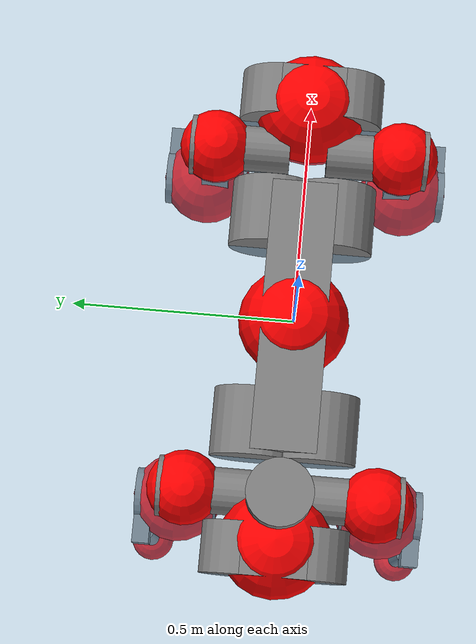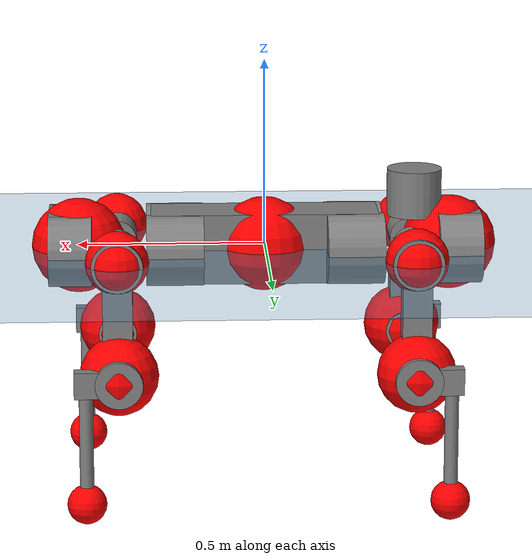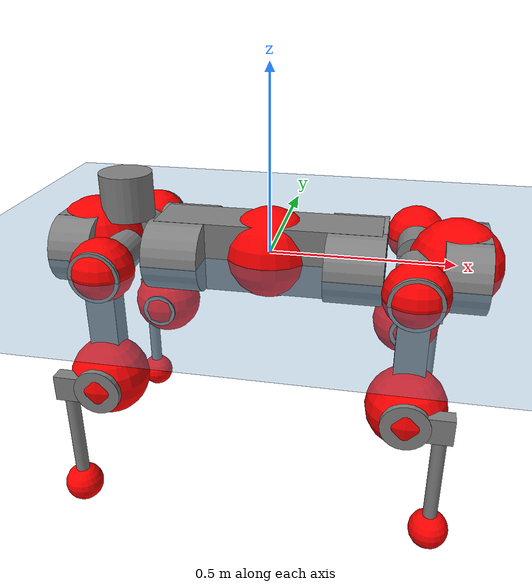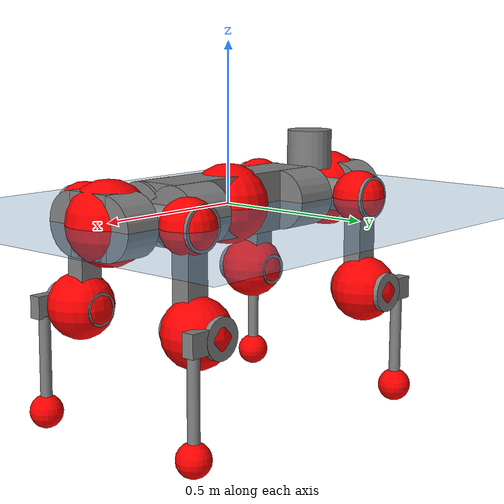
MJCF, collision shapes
<mujoco model="anymal_c">
  <compiler angle="radian" assetdir="assets" balanceinertia="true" inertiafromgeom="false"/>

  <option timestep="0.005" density="1.2" viscosity="2e-05"/>

  <size nkey="1"/>

  <visual>
    <quality shadowsize="8192"/>
    <map shadowclip="0.5"/>
  </visual>

  <default>
    <default class="/">
      <material specular="0" shininess="0.25"/>
      <geom contype="0" conaffinity="0" group="1" solref="-1000 -80"/>
      <site size="0.01 0.005 0.005" group="5"/>
      <general forcelimited="true" forcerange="-80 80" biastype="affine" gainprm="80" biasprm="0 -80 -2"/>
      <default class="anymal_c">
        <joint armature="0.01" damping="0.01" frictionloss="0.1"/>
        <default class="visual">
          <geom type="mesh" group="2"/>
          <default class="visual_zflip"/>
        </default>
        <default class="collision">
          <geom type="cylinder" group="3"/>
          <default class="foot">
            <geom size="0.03 0 0" type="sphere" condim="6" priority="1" friction="0.8 0.02 0.01" solimp="0.015 1 0.03"/>
          </default>
        </default>
      </default>
      <default class="reward_collision_sphere">
        <geom group="5" rgba="1 0 0 1"/>
      </default>
    </default>
  </default>

  <asset>
    <texture type="skybox" colorspace="auto" name="//unnamed_texture_0" builtin="gradient" rgb1="0.95 0.95 0.95" rgb2="0.95 0.95 0.95" width="100" height="600"/>
    <texture type="2d" colorspace="auto" name="texplane" builtin="checker" rgb1="0.345 0.575 0.748" rgb2="0.345 0.575 0.748" markrgb="1 1 1" width="512" height="512"/>
    <texture type="2d" colorspace="linear" name="base" file="base.png"/>
    <texture type="2d" colorspace="linear" name="top_shell" file="top_shell.png"/>
    <texture type="2d" colorspace="linear" name="bottom_shell" file="bottom_shell.png"/>
    <texture type="2d" colorspace="linear" name="remote" file="remote.png"/>
    <texture type="2d" colorspace="linear" name="hatch" file="hatch.png"/>
    <texture type="2d" colorspace="linear" name="handle" file="handle.png"/>
    <texture type="2d" colorspace="linear" name="face" file="face.png"/>
    <texture type="2d" colorspace="linear" name="battery" file="battery.png"/>
    <texture type="2d" colorspace="linear" name="lidar_cage" file="lidar_cage.png"/>
    <texture type="2d" colorspace="linear" name="depth_camera" file="depth_camera.png"/>
    <texture type="2d" colorspace="linear" name="wide_angle_camera" file="wide_angle_camera.png"/>
    <texture type="2d" colorspace="linear" name="lidar" file="lidar.png"/>
    <texture type="2d" colorspace="linear" name="drive" file="drive.png"/>
    <texture type="2d" colorspace="linear" name="hip_l" file="hip_l.png"/>
    <texture type="2d" colorspace="linear" name="shank_l" file="shank_l.png"/>
    <texture type="2d" colorspace="linear" name="foot" file="foot.png"/>
    <texture type="2d" colorspace="linear" name="thigh" file="thigh.png"/>
    <texture type="2d" colorspace="linear" name="shank_r" file="shank_r.png"/>
    <texture type="2d" colorspace="linear" name="hip_r" file="hip_r.png"/>
    <material name="MatPlane" class="/" texture="texplane" texuniform="true" texrepeat="2 2" specular="0.9" shininess="0.5"/>
    <material name="black_plastic" class="/" rgba="0.007 0.007 0.007 1"/>
    <material name="green" class="/" rgba="0.052 0.178 0.033 1"/>
    <material name="red" class="/" rgba="0.178 0.006 0.005 1"/>
    <material name="yellow" class="/" rgba="0.178 0.119 0.006 1"/>
    <material name="lwl" class="/" rgba="0.8 0.8 0.8 1"/>
    <material name="base" class="/" texture="base"/>
    <material name="top_shell" class="/" texture="top_shell"/>
    <material name="bottom_shell" class="/" texture="bottom_shell"/>
    <material name="hip_l" class="/" texture="hip_l"/>
    <material name="thigh" class="/" texture="thigh"/>
    <material name="shank_l" class="/" texture="shank_l"/>
    <material name="foot" class="/" texture="foot"/>
    <material name="hip_r" class="/" texture="hip_r"/>
    <material name="shank" class="/" texture="shank_r"/>
    <material name="hatch" class="/" texture="hatch"/>
    <material name="remote" class="/" texture="remote"/>
    <material name="handle" class="/" texture="handle"/>
    <material name="face" class="/" texture="face"/>
    <material name="depth_camera" class="/" texture="depth_camera"/>
    <material name="wide_angle_camera" class="/" texture="wide_angle_camera"/>
    <material name="battery" class="/" texture="battery"/>
    <material name="lidar_cage" class="/" texture="lidar_cage"/>
    <material name="lidar" class="/" texture="lidar"/>
    <material name="drive" class="/" texture="drive"/>
    <mesh name="base_0" class="/" file="base_0.obj"/>
    <mesh name="base_1" class="/" file="base_1.obj"/>
    <mesh name="base_2" class="/" file="base_2.obj"/>
    <mesh name="base_3" class="/" file="base_3.obj"/>
    <mesh name="base_4" class="/" file="base_4.obj"/>
    <mesh name="base_5" class="/" file="base_5.obj"/>
    <mesh name="top_shell" class="/" file="top_shell.obj"/>
    <mesh name="bottom_shell" class="/" file="bottom_shell.obj"/>
    <mesh name="remote" class="/" file="remote.obj"/>
    <mesh name="handle" class="/" file="handle.obj"/>
    <mesh name="face" class="/" file="face.obj"/>
    <mesh name="wide_angle_camera" class="/" file="wide_angle_camera.obj"/>
    <mesh name="depth_camera" class="/" file="depth_camera.obj"/>
    <mesh name="battery" class="/" file="battery.obj"/>
    <mesh name="lidar_cage" class="/" file="lidar_cage.obj"/>
    <mesh name="lidar" class="/" file="lidar.obj"/>
    <mesh name="drive" class="/" file="drive.obj"/>
    <mesh name="hip_l" class="/" file="hip_l.obj"/>
    <mesh name="thigh" class="/" file="thigh.obj"/>
    <mesh name="shank_l" class="/" file="shank_l.obj"/>
    <mesh name="foot" class="/" file="foot.obj"/>
    <mesh name="hip_r" class="/" file="hip_r.obj"/>
    <mesh name="hatch" class="/" file="hatch.obj"/>
    <mesh name="shank_r" class="/" file="shank_r.obj"/>
  </asset>

  <worldbody>
    <geom name="floor" class="/" size="100 100 0.125" type="plane" group="0" material="MatPlane"/>
    <light name="toplight_shadow" class="/" pos="0 0 5" dir="0.0990148 0.0990148 -0.990148" type="directional" ambient="0.04 0.04 0.04" diffuse="0.55 0.55 0.55" specular="0.12 0.12 0.12"/>
    <light name="toplight_fill" class="/" pos="0 0 5" dir="0.0990148 0.0990148 -0.990148" type="directional" castshadow="false" ambient="0.04 0.04 0.04" diffuse="0.3 0.3 0.3" specular="0.08 0.08 0.08"/>
    <body name="trunk" childclass="anymal_c" pos="0.000502126 -0.00033188 0.000362349" quat="1 -0.000597385 -3.43422e-05 -0.000116757">
      <inertial pos="0.000657401 -0.00279578 0.0497138" quat="0.501146 0.501781 0.500506 0.49655" mass="22.6775" diaginertia="1.04558 0.588544 0.269363"/>
      <joint name="//unnamed_joint_0" type="free" armature="0" damping="0" frictionloss="0"/>
      <geom name="//unnamed_geom_1" class="visual" material="green" mesh="base_0"/>
      <geom name="//unnamed_geom_2" class="visual" material="yellow" mesh="base_1"/>
      <geom name="//unnamed_geom_3" class="visual" material="red" mesh="base_2"/>
      <geom name="//unnamed_geom_4" class="visual" material="black_plastic" mesh="base_3"/>
      <geom name="//unnamed_geom_5" class="visual" material="lwl" mesh="base_4"/>
      <geom name="//unnamed_geom_6" class="visual" material="base" mesh="base_5"/>
      <geom name="trunk_1" class="collision" size="0.303469 0.0732513 0.0941802" type="box"/>
      <geom name="trunk_2" class="collision" size="0.0941802 0.0758674" pos="0.240027 0.0692704 0" quat="0.707107 0 0.707107 0"/>
      <geom name="trunk_3" class="collision" size="0.0941802 0.0758674" pos="-0.240027 0.0692704 0" quat="0.707107 0 0.707107 0"/>
      <geom name="trunk_4" class="collision" size="0.0941802 0.0758674" pos="0.240027 -0.0692704 0" quat="0.707107 0 0.707107 0"/>
      <geom name="trunk_5" class="collision" size="0.0941802 0.0758674" pos="-0.240027 -0.0692704 0" quat="0.707107 0 0.707107 0"/>
      <geom name="//unnamed_geom_12" class="visual" material="top_shell" mesh="top_shell"/>
      <geom name="//unnamed_geom_13" class="visual" material="bottom_shell" mesh="bottom_shell"/>
      <geom name="//unnamed_geom_14" class="visual" material="remote" mesh="remote"/>
      <geom name="//unnamed_geom_15" class="visual" material="handle" mesh="handle"/>
      <geom name="//unnamed_geom_16" class="visual" pos="0.457431 0 0" quat="1 0 0 0" material="face" mesh="face"/>
      <geom name="trunk_6" class="collision" size="0.0575546 0.0732513 0.0941802" pos="0.518128 0 0" type="box"/>
      <geom name="//unnamed_geom_18" class="collision" size="0.0941802 0.0575546" pos="0.518128 0.0692704 0" quat="0.707107 0 0.707107 0"/>
      <geom name="//unnamed_geom_19" class="collision" size="0.0941802 0.0575546" pos="0.518128 -0.0692704 0" quat="0.707107 0 0.707107 0"/>
      <geom name="//unnamed_geom_20" class="visual" pos="0.509462 0 -0.0301126" quat="0.965926 0 0.258819 0" material="depth_camera" mesh="depth_camera"/>
      <geom name="//unnamed_geom_21" class="visual" pos="0.566133 0 0.0156614" material="wide_angle_camera" mesh="wide_angle_camera"/>
      <geom name="//unnamed_geom_22" class="visual_zflip" pos="-0.457431 0 0" quat="0 0 0 1" material="face" mesh="face"/>
      <geom name="trunk_7" class="collision" size="0.0575546 0.0732513 0.0941802" pos="-0.518128 0 0" quat="0 0 0 1" type="box"/>
      <geom name="//unnamed_geom_24" class="collision" size="0.0941802 0.0575546" pos="-0.518128 -0.0692704 0" quat="0 -0.707107 0 0.707107"/>
      <geom name="//unnamed_geom_25" class="collision" size="0.0941802 0.0575546" pos="-0.518128 0.0692704 0" quat="0 -0.707107 0 0.707107"/>
      <geom name="//unnamed_geom_26" class="visual" pos="-0.509462 0 -0.0301126" quat="0 -0.258819 0 0.965926" material="depth_camera" mesh="depth_camera"/>
      <geom name="//unnamed_geom_27" class="visual_zflip" pos="-0.566133 0 0.0156614" quat="0 0 0 1" material="wide_angle_camera" mesh="wide_angle_camera"/>
      <geom name="//unnamed_geom_28" class="visual" material="battery" mesh="battery"/>
      <geom name="//unnamed_geom_29" class="visual" pos="0 0.0741649 0.0308279" quat="0.683013 -0.183013 0.183013 0.683013" material="depth_camera" mesh="depth_camera"/>
      <geom name="//unnamed_geom_30" class="visual" pos="0 -0.0741649 0.0308279" quat="0.683013 0.183013 0.183013 -0.683013" material="depth_camera" mesh="depth_camera"/>
      <geom name="//unnamed_geom_31" class="visual" pos="-0.401701 0 0.0768949" quat="1 0 0 0" material="lidar_cage" mesh="lidar_cage"/>
      <geom name="trunk_8" class="collision" size="0.0732513 0.0627868" pos="-0.401701 0 0.139666"/>
      <geom name="//unnamed_geom_33" class="visual" pos="-0.401701 -4.47856e-05 0.148768" quat="0.707107 0 0 -0.707107" material="lidar" mesh="lidar"/>
      <geom name="//unnamed_geom_34" class="visual" pos="0.330962 0.102936 -9.76545e-10" quat="0.258819 0.965926 0 0" material="drive" mesh="drive"/>
      <geom name="//unnamed_geom_35" class="visual" pos="0.330962 -0.102936 9.76545e-10" quat="0.258819 -0.965926 0 0" material="drive" mesh="drive"/>
      <geom name="//unnamed_geom_36" class="visual" pos="-0.330962 0.102936 9.76545e-10" quat="0 0 0.965926 -0.258819" material="drive" mesh="drive"/>
      <geom name="//unnamed_geom_37" class="visual" pos="-0.330962 -0.102936 -9.76545e-10" quat="0 0 -0.965926 -0.258819" material="drive" mesh="drive"/>
      <geom name="//unnamed_geom_38" class="visual" pos="0.128014 0 0.0763718" quat="1 0 0 0" material="hatch" mesh="hatch"/>
      <geom name="//unnamed_geom_39" class="reward_collision_sphere" size="0.125574"/>
      <geom name="//unnamed_geom_40" class="reward_collision_sphere" size="0.125574" pos="0.496608 0 0"/>
      <geom name="//unnamed_geom_41" class="reward_collision_sphere" size="0.125574" pos="-0.496608 0 0"/>
      <site name="imu" pos="0.287629 0.00819702 0.0353003" size="0.0104645"/>
      <camera name="track" pos="0 -1.97916 0" quat="0.707107 0.707107 0 0" mode="trackcom"/>
      <camera name="ego_camera" pos="0.496608 0 -0.0418476" quat="-0.5 -0.5 0.5 0.5"/>
      <body name="LF_HIP" pos="0.328701 0.10038 -0.001265" quat="0.258883 0.965909 0.000410511 -0.000322284">
        <inertial pos="0.0623774 -0.017545 -0.00789206" quat="-0.127962 0.709793 -0.134988 0.67941" mass="3.17131" diaginertia="0.00940506 0.00439001 0.00400791"/>
        <joint name="LF_HAA" pos="0 0 0" axis="1 -0.00046346 -8.06927e-05" range="-0.723155 0.508367" armature="0.0105788" damping="0.0216247" frictionloss="0.0915897"/>
        <geom name="//unnamed_geom_42" class="visual" pos="0 -5.74457e-05 9.43542e-06" quat="0.258819 -0.965926 0 0" material="hip_l" mesh="hip_l"/>
        <geom name="//unnamed_geom_43" class="visual" pos="0.066104 -0.0786183 -0.045809" quat="0.183013 -0.683013 0.683013 0.183013" material="drive" mesh="drive"/>
        <geom name="//unnamed_geom_44" class="collision" size="0.0523223 0.0732513" pos="0.066104 -0.0118352 -0.00722393" quat="-0.353553 -0.612372 0.612372 -0.353553"/>
        <body name="LF_THIGH" pos="0.0645833 -0.0692817 -0.0426791" quat="0.183273 -0.683713 0.682063 0.183677">
          <inertial pos="0.0341744 0.000258788 -0.255104" quat="0.991513 -0.00445749 -0.092336 0.0914116" mass="3.43126" diaginertia="0.0498808 0.0277844 0.00528088"/>
          <joint name="LF_HFE" pos="0 0 0" axis="0.999994 0.00264637 -0.00239673" stiffness="0.0031062" range="-3.08825 3.18689" armature="0.0107583" damping="0.021917" frictionloss="0.0941812"/>
          <geom name="//unnamed_geom_45" class="visual" pos="0.00226806 3.57392e-06 0" quat="0.707107 0 0 -0.707107" material="thigh" mesh="thigh"/>
          <geom name="//unnamed_geom_46" class="collision" size="0.068019 0.0418579" pos="0.0441429 0 0" quat="0.5 0.5 -0.5 -0.5"/>
          <geom name="//unnamed_geom_47" class="collision" size="0.0392417 0.0313934 0.147878" pos="0.0331072 0 -0.147841" quat="0.707107 0 0 -0.707107" type="box"/>
          <geom name="//unnamed_geom_48" class="visual" pos="0.110688 0 -0.298164" quat="1 0 0 0" material="drive" mesh="drive"/>
          <geom name="//unnamed_geom_49" class="collision" size="0.0523223 0.0732513" pos="0.0334383 0 -0.298164" quat="0.707107 0 0.707107 0"/>
          <geom name="//unnamed_geom_50" class="reward_collision_sphere" size="0.0837157" pos="0.0275893 0 0"/>
          <body name="LF_SHANK" pos="0.111831 0.00269934 -0.297322" quat="1 -5.30862e-05 -0.000156873 -0.000186013">
            <inertial pos="0.00588122 -0.0614594 -0.0858397" quat="0.992996 -0.115126 -0.00355104 -0.026308" mass="0.683977" diaginertia="0.0162618 0.00879549 0.00140523"/>
            <joint name="LF_KFE" pos="0 0 0" axis="0.999985 -0.00341696 0.00433399" range="-3.09206 3.14719" armature="0.0106017" damping="0.00581945" frictionloss="0.107392"/>
            <geom name="//unnamed_geom_51" class="visual" pos="0.000739563 0.00394339 0" quat="0.707107 0 0 -0.707107" material="shank_l" mesh="shank_l"/>
            <geom name="LF_kfe_act" class="collision" size="0.0627868 0.0209289" pos="0.0220715 0 0" quat="0.5 0.5 -0.5 -0.5"/>
            <geom name="//unnamed_geom_53" class="collision" size="0.0601696 0.0353176 0.0198825" pos="0.0220715 -0.0568997 0" quat="0.5 0.5 -0.5 -0.5" type="box"/>
            <geom name="//unnamed_geom_54" class="visual" pos="0.0144014 -0.0857626 -0.35358" quat="0.382683 0 0 -0.92388" material="foot" mesh="foot"/>
            <geom name="LF_calf" class="collision" size="0.0183128 0.147813" pos="0.0144016 -0.0870334 -0.17679" quat="0.707107 0 0 -0.707107"/>
            <geom name="LF_foot" class="foot" size="0.0309803" pos="0.0144016 -0.0870334 -0.330041" quat="0.707107 0 0 -0.707107"/>
            <geom name="//unnamed_geom_57" class="reward_collision_sphere" size="0.104645" pos="-0.0551786 0 0"/>
            <geom name="//unnamed_geom_58" class="reward_collision_sphere" size="0.0523223" pos="0.0144016 -0.0870334 -0.330041"/>
            <site name="LF_foot" class="foot" pos="0.0144016 -0.0870334 -0.330041" quat="0.707107 0 0 -0.707107" size="0.0104645"/>
          </body>
        </body>
      </body>
      <body name="RF_HIP" pos="0.328796 -0.103302 0.000698494" quat="0.258809 -0.965928 -2.17228e-05 -2.35373e-05">
        <inertial pos="0.0603622 0.0134326 -0.0112329" quat="0.141132 0.678437 0.137629 0.707717" mass="3.16325" diaginertia="0.00913231 0.00475903 0.00393006"/>
        <joint name="RF_HAA" pos="0 0 0" axis="0.999928 -0.0103063 -0.00614721" range="-0.513875 0.728792" armature="0.0106508" damping="0" frictionloss="0.107545"/>
        <geom name="//unnamed_geom_59" class="visual" pos="0 5.74453e-05 9.43539e-06" quat="0.258819 0.965926 0 0" material="hip_r" mesh="hip_r"/>
        <geom name="//unnamed_geom_60" class="visual" pos="0.066104 0.0786183 -0.045809" quat="0.183013 0.683013 0.683013 -0.183013" material="drive" mesh="drive"/>
        <geom name="//unnamed_geom_61" class="collision" size="0.0523223 0.0732513" pos="0.066104 0.0118352 -0.00722393" quat="-0.353553 0.612372 0.612372 0.353553"/>
        <body name="RF_THIGH" pos="0.0682467 0.0706366 -0.0464347" quat="0.183029 0.683556 0.682258 -0.183784">
          <inertial pos="0.0366528 -4.23579e-05 -0.258684" quat="0.99252 0.0034762 -0.0864746 0.0861075" mass="3.68596" diaginertia="0.0486623 0.0277112 0.00548151"/>
          <joint name="RF_HFE" pos="0 0 0" axis="0.999999 -0.000874127 -0.00140183" range="-3.13669 3.15813" armature="0.00930923" damping="0.0104523" frictionloss="0.109846"/>
          <geom name="//unnamed_geom_62" class="visual" pos="0.00226806 3.57392e-06 0" quat="0.707107 0 0 -0.707107" material="thigh" mesh="thigh"/>
          <geom name="//unnamed_geom_63" class="collision" size="0.068019 0.0418579" pos="0.0441429 0 0" quat="0.5 0.5 0.5 0.5"/>
          <geom name="//unnamed_geom_64" class="collision" size="0.0392417 0.0313934 0.147878" pos="0.0331072 0 -0.147841" quat="0.707107 0 0 0.707107" type="box"/>
          <geom name="//unnamed_geom_65" class="visual" pos="0.110688 0 -0.298164" quat="1 0 0 0" material="drive" mesh="drive"/>
          <geom name="//unnamed_geom_66" class="collision" size="0.0523223 0.0732513" pos="0.0334383 0 -0.298164" quat="0.707107 0 0.707107 0"/>
          <geom name="//unnamed_geom_67" class="reward_collision_sphere" size="0.0837157" pos="0.0275893 0 0"/>
          <body name="RF_SHANK" pos="0.108188 0.000337981 -0.298499" quat="1 -0.000973784 3.33436e-05 -0.000206643">
            <inertial pos="0.00351394 0.060643 -0.0843561" quat="0.993058 0.112064 -0.00673661 0.0350969" mass="0.716094" diaginertia="0.017414 0.00892458 0.0014504"/>
            <joint name="RF_KFE" pos="0 0 0" axis="1 2.0695e-06 -3.74342e-05" range="-3.18877 3.09238" armature="0.0120724" damping="0.0221119" frictionloss="0.111199"/>
            <geom name="//unnamed_geom_68" class="visual" pos="0.000739559 -0.00394338 0" quat="0.707107 0 0 0.707107" material="shank" mesh="shank_r"/>
            <geom name="RF_kfe_act" class="collision" size="0.0627868 0.0209289" pos="0.0220715 0 0" quat="0.5 0.5 0.5 0.5"/>
            <geom name="//unnamed_geom_70" class="collision" size="0.0601696 0.0353176 0.0198825" pos="0.0220715 0.0568997 0" quat="0.5 0.5 0.5 0.5" type="box"/>
            <geom name="//unnamed_geom_71" class="visual" pos="0.0144018 0.0857626 -0.35358" quat="0.382683 0 0 0.92388" material="foot" mesh="foot"/>
            <geom name="RF_calf" class="collision" size="0.0183128 0.147813" pos="0.0144016 0.0870334 -0.17679" quat="0.707107 0 0 0.707107"/>
            <geom name="RF_foot" class="foot" size="0.0280229" pos="0.0144016 0.0870334 -0.330041" quat="0.707107 0 0 0.707107"/>
            <geom name="//unnamed_geom_74" class="reward_collision_sphere" size="0.104645" pos="-0.0551786 0 0"/>
            <geom name="//unnamed_geom_75" class="reward_collision_sphere" size="0.0523223" pos="0.0144016 0.0870334 -0.330041"/>
            <site name="RF_foot" class="foot" pos="0.0144016 0.0870334 -0.330041" quat="0.707107 0 0 0.707107" size="0.0104645"/>
          </body>
        </body>
      </body>
      <body name="LH_HIP" pos="-0.327684 0.100837 -0.00163374" quat="-7.62461e-06 -7.951e-07 0.965921 -0.258835">
        <inertial pos="0.0624793 0.0174235 -0.0111745" quat="0.132863 0.669843 0.134276 0.718073" mass="3.28831" diaginertia="0.0101293 0.0048652 0.00415557"/>
        <joint name="LH_HAA" pos="0 0 0" axis="0.999886 -0.0151042 0.000695484" range="-0.504695 0.733789" armature="0.0110432" damping="0" frictionloss="0.104943"/>
        <geom name="//unnamed_geom_76" class="visual" pos="0 5.74453e-05 9.43539e-06" quat="-0.258819 -0.965926 0 0" material="hip_r" mesh="hip_r"/>
        <geom name="//unnamed_geom_77" class="visual" pos="0.066104 0.0786183 -0.045809" quat="0.183013 0.683013 0.683013 -0.183013" material="drive" mesh="drive"/>
        <geom name="//unnamed_geom_78" class="collision" size="0.0523223 0.0732513" pos="0.066104 0.0118352 -0.00722393" quat="-0.353553 0.612372 0.612372 0.353553"/>
        <body name="LH_THIGH" pos="0.0651299 0.070636 -0.0437605" quat="0.18301 0.683042 0.682993 -0.18298">
          <inertial pos="0.0320178 7.78022e-05 -0.259346" quat="0.992566 -0.00639239 -0.0818494 0.0898483" mass="3.36507" diaginertia="0.0465594 0.0283283 0.00510886"/>
          <joint name="LH_HFE" pos="0 0 0" axis="1 -0.000178942 2.70981e-05" stiffness="0.0106765" range="-3.17682 3.09039" armature="0.0099845" damping="0" frictionloss="0.105503"/>
          <geom name="//unnamed_geom_79" class="visual" pos="0.00226806 3.57392e-06 0" quat="0.707107 0 0 -0.707107" material="thigh" mesh="thigh"/>
          <geom name="//unnamed_geom_80" class="collision" size="0.068019 0.0418579" pos="0.0441429 0 0" quat="0.5 0.5 -0.5 -0.5"/>
          <geom name="//unnamed_geom_81" class="collision" size="0.0392417 0.0313934 0.147878" pos="0.0331072 0 -0.147841" quat="0.707107 0 0 -0.707107" type="box"/>
          <geom name="//unnamed_geom_82" class="visual" pos="0.110688 0 -0.298164" quat="1 0 0 0" material="drive" mesh="drive"/>
          <geom name="//unnamed_geom_83" class="collision" size="0.0523223 0.0732513" pos="0.0334383 0 -0.298164" quat="0.707107 0 0.707107 0"/>
          <geom name="//unnamed_geom_84" class="reward_collision_sphere" size="0.0837157" pos="0.0275893 0 0"/>
          <body name="LH_SHANK" pos="0.110141 -0.000594057 -0.29854" quat="1 6.99815e-05 0.000104498 7.11995e-05">
            <inertial pos="0.00771623 0.0633026 -0.0845026" quat="0.992426 0.117283 -0.00523326 0.0361597" mass="0.690656" diaginertia="0.01651 0.00929505 0.00143657"/>
            <joint name="LH_KFE" pos="0 0 0" axis="1 0.000175118 -0.000620834" range="-3.08838 3.08851" armature="0.011864" damping="0.0229174" frictionloss="0.089992"/>
            <geom name="//unnamed_geom_85" class="visual" pos="0.000739559 -0.00394338 0" quat="-0.707107 0 0 -0.707107" material="shank" mesh="shank_r"/>
            <geom name="LH_kfe_act" class="collision" size="0.0627868 0.0209289" pos="0.0220715 0 0" quat="0.5 0.5 -0.5 -0.5"/>
            <geom name="//unnamed_geom_87" class="collision" size="0.0601696 0.0353176 0.0198825" pos="0.0220715 0.0568997 0" quat="0.5 0.5 -0.5 -0.5" type="box"/>
            <geom name="//unnamed_geom_88" class="visual" pos="0.0144018 0.0857626 -0.35358" quat="-0.382683 0 0 -0.92388" material="foot" mesh="foot"/>
            <geom name="LH_calf" class="collision" size="0.0183128 0.147813" pos="0.0144016 0.0870334 -0.17679" quat="0.707107 0 0 -0.707107"/>
            <geom name="LH_foot" class="foot" size="0.0346496" pos="0.0144016 0.0870334 -0.330041" quat="0.707107 0 0 -0.707107"/>
            <geom name="//unnamed_geom_91" class="reward_collision_sphere" size="0.104645" pos="-0.0551786 0 0"/>
            <geom name="//unnamed_geom_92" class="reward_collision_sphere" size="0.0523223" pos="0.0144016 0.0870334 -0.330041"/>
            <site name="LH_foot" class="foot" pos="0.0144016 0.0870334 -0.330041" quat="0.707107 0 0 -0.707107" size="0.0104645"/>
          </body>
        </body>
      </body>
      <body name="RH_HIP" pos="-0.32884 -0.10415 0.0015915" quat="9.71146e-05 -3.69851e-05 -0.965929 -0.258807">
        <inertial pos="0.0603664 -0.0134471 -0.0112757" quat="-0.128907 0.70487 -0.14253 0.682808" mass="3.20921" diaginertia="0.00929397 0.00457107 0.00401852"/>
        <joint name="RH_HAA" pos="0 0 0" axis="0.999901 0.0137316 -0.0030329" stiffness="0.00103882" range="-0.777281 0.530258" armature="0.00997132" damping="0.00207031" frictionloss="0.104677"/>
        <geom name="//unnamed_geom_93" class="visual" pos="0 -5.74457e-05 9.43542e-06" quat="-0.258819 0.965926 0 0" material="hip_l" mesh="hip_l"/>
        <geom name="//unnamed_geom_94" class="visual" pos="0.066104 -0.0786183 -0.045809" quat="-0.183013 0.683013 -0.683013 -0.183013" material="drive" mesh="drive"/>
        <geom name="//unnamed_geom_95" class="collision" size="0.0523223 0.0732513" pos="0.066104 -0.0118352 -0.00722393" quat="0.353553 0.612372 -0.612372 0.353553"/>
        <body name="RH_THIGH" pos="0.0683602 -0.0707691 -0.0459297" quat="-0.183619 0.683432 -0.682717 -0.181938">
          <inertial pos="0.0342984 0.00198302 -0.257476" quat="0.993142 -0.00672523 -0.0805239 0.0844976" mass="3.29948" diaginertia="0.0464228 0.0277442 0.0051565"/>
          <joint name="RH_HFE" pos="0 0 0" axis="0.999988 0.00370307 -0.00324966" stiffness="0.00148204" range="-3.09765 3.14888" armature="0.0110137" damping="0.0164061" frictionloss="0.10507"/>
          <geom name="//unnamed_geom_96" class="visual" pos="0.00226806 3.57392e-06 0" quat="0.707107 0 0 -0.707107" material="thigh" mesh="thigh"/>
          <geom name="//unnamed_geom_97" class="collision" size="0.068019 0.0418579" pos="0.0441429 0 0" quat="0.5 0.5 0.5 0.5"/>
          <geom name="//unnamed_geom_98" class="collision" size="0.0392417 0.0313934 0.147878" pos="0.0331072 0 -0.147841" quat="0.707107 0 0 0.707107" type="box"/>
          <geom name="//unnamed_geom_99" class="visual" pos="0.110688 0 -0.298164" quat="1 0 0 0" material="drive" mesh="drive"/>
          <geom name="//unnamed_geom_100" class="collision" size="0.0523223 0.0732513" pos="0.0334383 0 -0.298164" quat="0.707107 0 0.707107 0"/>
          <geom name="//unnamed_geom_101" class="reward_collision_sphere" size="0.0837157" pos="0.0275893 0 0"/>
          <body name="RH_SHANK" pos="0.109871 0.00273635 -0.297572" quat="0.999999 0.000678368 -5.51385e-05 -0.00110673">
            <inertial pos="0.00893164 -0.0616074 -0.0847846" quat="0.991373 -0.12743 0.00442385 -0.0303716" mass="0.683533" diaginertia="0.0162112 0.00877308 0.00137022"/>
            <joint name="RH_KFE" pos="0 0 0" axis="1 0.000102114 0.000983284" range="-3.13132 3.1896" armature="0.0104413" damping="0.0225808" frictionloss="0.110905"/>
            <geom name="//unnamed_geom_102" class="visual" pos="0.000739563 0.00394339 0" quat="0.707107 0 0 -0.707107" material="shank_l" mesh="shank_l"/>
            <geom name="RH_kfe_act" class="collision" size="0.0627868 0.0209289" pos="0.0220715 0 0" quat="0.5 0.5 0.5 0.5"/>
            <geom name="//unnamed_geom_104" class="collision" size="0.0601696 0.0353176 0.0198825" pos="0.0220715 -0.0568997 0" quat="0.5 0.5 0.5 0.5" type="box"/>
            <geom name="//unnamed_geom_105" class="visual" pos="0.0144014 -0.0857626 -0.35358" quat="0.382683 0 0 -0.92388" material="foot" mesh="foot"/>
            <geom name="RH_calf" class="collision" size="0.0183128 0.147813" pos="0.0144016 -0.0870334 -0.17679" quat="0.707107 0 0 0.707107"/>
            <geom name="RH_foot" class="foot" size="0.0272565" pos="0.0144016 -0.0870334 -0.330041" quat="0.707107 0 0 0.707107"/>
            <geom name="//unnamed_geom_108" class="reward_collision_sphere" size="0.104645" pos="-0.0551786 0 0"/>
            <geom name="//unnamed_geom_109" class="reward_collision_sphere" size="0.0523223" pos="0.0144016 -0.0870334 -0.330041"/>
            <site name="RH_foot" class="foot" pos="0.0144016 -0.0870334 -0.330041" quat="0.707107 0 0 0.707107" size="0.0104645"/>
          </body>
        </body>
      </body>
    </body>
  </worldbody>

  <contact>
    <pair class="/" geom1="floor" geom2="LF_foot" name="//unnamed_contact_0"/>
    <pair class="/" geom1="floor" geom2="RF_foot" name="//unnamed_contact_1"/>
    <pair class="/" geom1="floor" geom2="LH_foot" name="//unnamed_contact_2"/>
    <pair class="/" geom1="floor" geom2="RH_foot" name="//unnamed_contact_3"/>
  </contact>

  <actuator>
    <general name="LF_HAA" class="/" joint="LF_HAA" forcerange="-75.9294 75.9294" gainprm="79.8744" biasprm="0 -79.8744 -2.09443"/>
    <general name="LF_HFE" class="/" joint="LF_HFE" forcerange="-75.8017 75.8017" gainprm="79.8744" biasprm="0 -79.8744 -2.09443"/>
    <general name="LF_KFE" class="/" joint="LF_KFE" forcerange="-83.8397 83.8397" gainprm="79.8744" biasprm="0 -79.8744 -2.09443"/>
    <general name="RF_HAA" class="/" joint="RF_HAA" forcerange="-84.4661 84.4661" gainprm="79.8744" biasprm="0 -79.8744 -2.09443"/>
    <general name="RF_HFE" class="/" joint="RF_HFE" forcerange="-93.8144 93.8144" gainprm="79.8744" biasprm="0 -79.8744 -2.09443"/>
    <general name="RF_KFE" class="/" joint="RF_KFE" forcerange="-86.8985 86.8985" gainprm="79.8744" biasprm="0 -79.8744 -2.09443"/>
    <general name="LH_HAA" class="/" joint="LH_HAA" forcerange="-85.2378 85.2378" gainprm="79.8744" biasprm="0 -79.8744 -2.09443"/>
    <general name="LH_HFE" class="/" joint="LH_HFE" forcerange="-75.9444 75.9444" gainprm="79.8744" biasprm="0 -79.8744 -2.09443"/>
    <general name="LH_KFE" class="/" joint="LH_KFE" forcerange="-87.5298 87.5298" gainprm="79.8744" biasprm="0 -79.8744 -2.09443"/>
    <general name="RH_HAA" class="/" joint="RH_HAA" forcerange="-86.1658 86.1658" gainprm="79.8744" biasprm="0 -79.8744 -2.09443"/>
    <general name="RH_HFE" class="/" joint="RH_HFE" forcerange="-92.9384 92.9384" gainprm="79.8744" biasprm="0 -79.8744 -2.09443"/>
    <general name="RH_KFE" class="/" joint="RH_KFE" forcerange="-81.3284 81.3284" gainprm="79.8744" biasprm="0 -79.8744 -2.09443"/>
  </actuator>

  <sensor>
    <gyro site="imu" name="imu_angular_velocity"/>
    <velocimeter site="imu" name="imu_linear_velocity"/>
    <framelinvel objtype="site" objname="LF_foot" name="LF_foot_global_linear_velocity"/>
    <framelinvel objtype="site" objname="RF_foot" name="RF_foot_global_linear_velocity"/>
    <framelinvel objtype="site" objname="LH_foot" name="LH_foot_global_linear_velocity"/>
    <framelinvel objtype="site" objname="RH_foot" name="RH_foot_global_linear_velocity"/>
  </sensor>

  <keyframe>
    <key name="home" qpos="0 0 0.55 1 0 0 0 0 0.4 -0.8 0 -0.4 0.8 0 -0.4 0.8 0 0.4 -0.8"/>
  </keyframe>
</mujoco>
